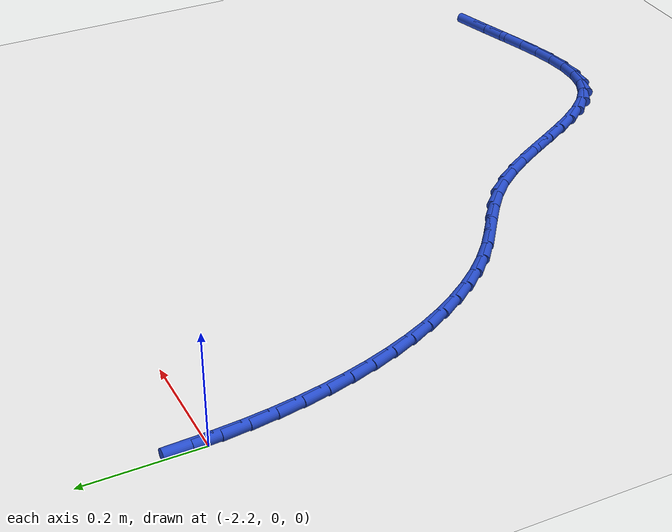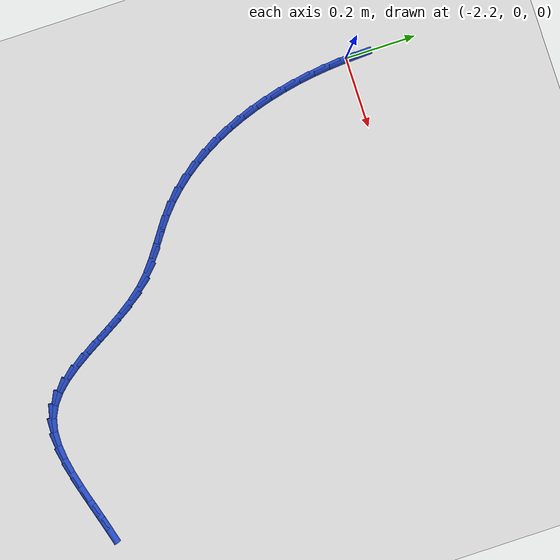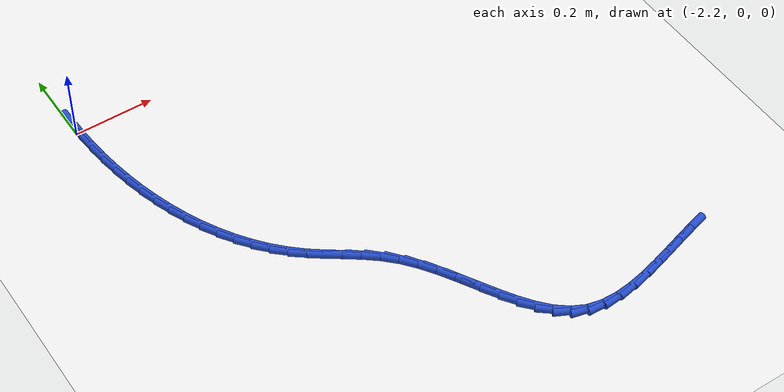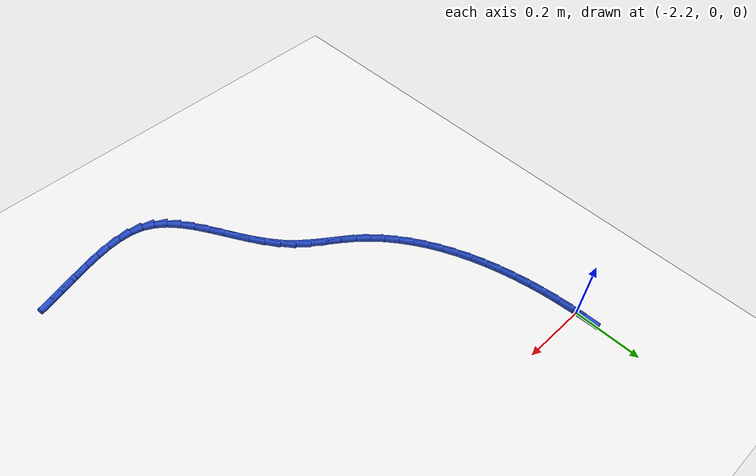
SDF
<sdf version="1.6">
 <world name="default">
  <model name="ground_plane">
   <static>1</static>
   <link name="link">
    <collision name="collision">
     <geometry><plane><normal>0 0 1</normal><size>100 100</size></plane></geometry>
     <surface><friction><ode><mu>100</mu><mu2>50</mu2></ode></friction></surface>
    </collision>
    <visual name="visual">
     <cast_shadows>0</cast_shadows>
     <geometry><plane><normal>0 0 1</normal><size>100 100</size></plane></geometry>
     <material>
      <script><uri>file://media/materials/scripts/gazebo.material</uri><name>Gazebo/WhiteGlow</name></script>
     </material>
    </visual>
   </link>
  </model>
  <model name="line">
   <link name="link_81">
    <pose>-2.1962870715884852 0.03083558580140903 0.01 0 1.57 -1.5311299063009747</pose>
    <collision name="collision">
     <geometry><cylinder><radius>0.01</radius><length>0.08</length></cylinder></geometry>
    </collision>
    <visual name="visual">
     <material>
      <script><name>Gazebo/Blue</name><uri>file://media/materials/scripts/gazebo.material</uri></script>
     </material>
     <geometry><cylinder><radius>0.01</radius><length>0.08</length></cylinder></geometry>
    </visual>
   </link>
   <link name="link_82">
    <pose>-2.1944944333536447 -0.014333550208515726 0.01 0 1.57 -1.493876951188243</pose>
    <collision name="collision">
     <geometry><cylinder><radius>0.01</radius><length>0.08</length></cylinder></geometry>
    </collision>
    <visual name="visual">
     <material>
      <script><name>Gazebo/Blue</name><uri>file://media/materials/scripts/gazebo.material</uri></script>
     </material>
     <geometry><cylinder><radius>0.01</radius><length>0.08</length></cylinder></geometry>
    </visual>
   </link>
   <link name="link_83">
    <pose>-2.1909994726579245 -0.05968058010404908 0.01 0 1.57 -1.4557814630714179</pose>
    <collision name="collision">
     <geometry><cylinder><radius>0.01</radius><length>0.08</length></cylinder></geometry>
    </collision>
    <visual name="visual">
     <material>
      <script><name>Gazebo/Blue</name><uri>file://media/materials/scripts/gazebo.material</uri></script>
     </material>
     <geometry><cylinder><radius>0.01</radius><length>0.08</length></cylinder></geometry>
    </visual>
   </link>
   <link name="link_84">
    <pose>-2.1857619215650894 -0.10501764082124379 0.01 0 1.57 -1.4165045528520377</pose>
    <collision name="collision">
     <geometry><cylinder><radius>0.01</radius><length>0.08</length></cylinder></geometry>
    </collision>
    <visual name="visual">
     <material>
      <script><name>Gazebo/Blue</name><uri>file://media/materials/scripts/gazebo.material</uri></script>
     </material>
     <geometry><cylinder><radius>0.01</radius><length>0.08</length></cylinder></geometry>
    </visual>
   </link>
   <link name="link_85">
    <pose>-2.1787415121389033 -0.15015686929615188 0.01 0 1.57 -1.3757044124202404</pose>
    <collision name="collision">
     <geometry><cylinder><radius>0.01</radius><length>0.08</length></cylinder></geometry>
    </collision>
    <visual name="visual">
     <material>
      <script><name>Gazebo/Blue</name><uri>file://media/materials/scripts/gazebo.material</uri></script>
     </material>
     <geometry><cylinder><radius>0.01</radius><length>0.08</length></cylinder></geometry>
    </visual>
   </link>
   <link name="link_86">
    <pose>-2.1698979764431288 -0.1949104024648253 0.01 0 1.57 -1.3330323817313314</pose>
    <collision name="collision">
     <geometry><cylinder><radius>0.01</radius><length>0.08</length></cylinder></geometry>
    </collision>
    <visual name="visual">
     <material>
      <script><name>Gazebo/Blue</name><uri>file://media/materials/scripts/gazebo.material</uri></script>
     </material>
     <geometry><cylinder><radius>0.01</radius><length>0.08</length></cylinder></geometry>
    </visual>
   </link>
   <link name="link_87">
    <pose>-2.159191046541532 -0.23909037726331683 0.01 0 1.57 -1.2881308047212123</pose>
    <collision name="collision">
     <geometry><cylinder><radius>0.01</radius><length>0.08</length></cylinder></geometry>
    </collision>
    <visual name="visual">
     <material>
      <script><name>Gazebo/Blue</name><uri>file://media/materials/scripts/gazebo.material</uri></script>
     </material>
     <geometry><cylinder><radius>0.01</radius><length>0.08</length></cylinder></geometry>
    </visual>
   </link>
   <link name="link_88">
    <pose>-2.146580454497875 -0.2825089306276769 0.01 0 1.57 -1.2406331932574808</pose>
    <collision name="collision">
     <geometry><cylinder><radius>0.01</radius><length>0.08</length></cylinder></geometry>
    </collision>
    <visual name="visual">
     <material>
      <script><name>Gazebo/Blue</name><uri>file://media/materials/scripts/gazebo.material</uri></script>
     </material>
     <geometry><cylinder><radius>0.01</radius><length>0.08</length></cylinder></geometry>
    </visual>
   </link>
   <link name="link_89">
    <pose>-2.1320259323759227 -0.32497819949395834 0.01 0 1.57 -1.190167490714678</pose>
    <collision name="collision">
     <geometry><cylinder><radius>0.01</radius><length>0.08</length></cylinder></geometry>
    </collision>
    <visual name="visual">
     <material>
      <script><name>Gazebo/Blue</name><uri>file://media/materials/scripts/gazebo.material</uri></script>
     </material>
     <geometry><cylinder><radius>0.01</radius><length>0.08</length></cylinder></geometry>
    </visual>
   </link>
   <link name="link_90">
    <pose>-2.1154872122394384 -0.3663103207982131 0.01 0 1.57 -1.1363635141410169</pose>
    <collision name="collision">
     <geometry><cylinder><radius>0.01</radius><length>0.08</length></cylinder></geometry>
    </collision>
    <visual name="visual">
     <material>
      <script><name>Gazebo/Blue</name><uri>file://media/materials/scripts/gazebo.material</uri></script>
     </material>
     <geometry><cylinder><radius>0.01</radius><length>0.08</length></cylinder></geometry>
    </visual>
   </link>
   <link name="link_91">
    <pose>-2.0969240261521858 -0.406317431476493 0.01 0 1.57 -1.0788659011745894</pose>
    <collision name="collision">
     <geometry><cylinder><radius>0.01</radius><length>0.08</length></cylinder></geometry>
    </collision>
    <visual name="visual">
     <material>
      <script><name>Gazebo/Blue</name><uri>file://media/materials/scripts/gazebo.material</uri></script>
     </material>
     <geometry><cylinder><radius>0.01</radius><length>0.08</length></cylinder></geometry>
    </visual>
   </link>
   <link name="link_92">
    <pose>-2.0762961061779297 -0.44481166846485104 0.01 0 1.57 -1.0173539798483802</pose>
    <collision name="collision">
     <geometry><cylinder><radius>0.01</radius><length>0.08</length></cylinder></geometry>
    </collision>
    <visual name="visual">
     <material>
      <script><name>Gazebo/Blue</name><uri>file://media/materials/scripts/gazebo.material</uri></script>
     </material>
     <geometry><cylinder><radius>0.01</radius><length>0.08</length></cylinder></geometry>
    </visual>
   </link>
   <link name="link_93">
    <pose>-2.053563184380433 -0.48160516869933767 0.01 0 1.57 -0.951569719071822</pose>
    <collision name="collision">
     <geometry><cylinder><radius>0.01</radius><length>0.08</length></cylinder></geometry>
    </collision>
    <visual name="visual">
     <material>
      <script><name>Gazebo/Blue</name><uri>file://media/materials/scripts/gazebo.material</uri></script>
     </material>
     <geometry><cylinder><radius>0.01</radius><length>0.08</length></cylinder></geometry>
    </visual>
   </link>
   <link name="link_94">
    <pose>-2.0286849928234605 -0.5165100691160054 0.01 0 1.57 -0.8813540256920338</pose>
    <collision name="collision">
     <geometry><cylinder><radius>0.01</radius><length>0.08</length></cylinder></geometry>
    </collision>
    <visual name="visual">
     <material>
      <script><name>Gazebo/Blue</name><uri>file://media/materials/scripts/gazebo.material</uri></script>
     </material>
     <geometry><cylinder><radius>0.01</radius><length>0.08</length></cylinder></geometry>
    </visual>
   </link>
   <link name="link_95">
    <pose>-2.001621263570775 -0.5493385066509062 0.01 0 1.57 -0.8066898335012568</pose>
    <collision name="collision">
     <geometry><cylinder><radius>0.01</radius><length>0.08</length></cylinder></geometry>
    </collision>
    <visual name="visual">
     <material>
      <script><name>Gazebo/Blue</name><uri>file://media/materials/scripts/gazebo.material</uri></script>
     </material>
     <geometry><cylinder><radius>0.01</radius><length>0.08</length></cylinder></geometry>
    </visual>
   </link>
   <link name="link_96">
    <pose>-1.9723317286861417 -0.5799026182400931 0.01 0 1.57 -0.7277475478803089</pose>
    <collision name="collision">
     <geometry><cylinder><radius>0.01</radius><length>0.08</length></cylinder></geometry>
    </collision>
    <visual name="visual">
     <material>
      <script><name>Gazebo/Blue</name><uri>file://media/materials/scripts/gazebo.material</uri></script>
     </material>
     <geometry><cylinder><radius>0.01</radius><length>0.08</length></cylinder></geometry>
    </visual>
   </link>
   <link name="link_97">
    <pose>-1.9407761202333238 -0.6080145408196167 0.01 0 1.57 -0.6520932779555263</pose>
    <collision name="collision">
     <geometry><cylinder><radius>0.01</radius><length>0.08</length></cylinder></geometry>
    </collision>
    <visual name="visual">
     <material>
      <script><name>Gazebo/Blue</name><uri>file://media/materials/scripts/gazebo.material</uri></script>
     </material>
     <geometry><cylinder><radius>0.01</radius><length>0.08</length></cylinder></geometry>
    </visual>
   </link>
   <link name="link_98">
    <pose>-1.9070865921185032 -0.6337369225241378 0.01 0 1.57 -0.6142797580801906</pose>
    <collision name="collision">
     <geometry><cylinder><radius>0.01</radius><length>0.08</length></cylinder></geometry>
    </collision>
    <visual name="visual">
     <material>
      <script><name>Gazebo/Blue</name><uri>file://media/materials/scripts/gazebo.material</uri></script>
     </material>
     <geometry><cylinder><radius>0.01</radius><length>0.08</length></cylinder></geometry>
    </visual>
   </link>
   <link name="link_99">
    <pose>-1.8722190750879717 -0.6583292744884289 0.01 0 1.57 -0.6238586758632365</pose>
    <collision name="collision">
     <geometry><cylinder><radius>0.01</radius><length>0.08</length></cylinder></geometry>
    </collision>
    <visual name="visual">
     <material>
      <script><name>Gazebo/Blue</name><uri>file://media/materials/scripts/gazebo.material</uri></script>
     </material>
     <geometry><cylinder><radius>0.01</radius><length>0.08</length></cylinder></geometry>
    </visual>
   </link>
   <link name="link_100">
    <pose>-1.8373752386891768 -0.6834081410442114 0.01 0 1.57 -0.6799289709515768</pose>
    <collision name="collision">
     <geometry><cylinder><radius>0.01</radius><length>0.08</length></cylinder></geometry>
    </collision>
    <visual name="visual">
     <material>
      <script><name>Gazebo/Blue</name><uri>file://media/materials/scripts/gazebo.material</uri></script>
     </material>
     <geometry><cylinder><radius>0.01</radius><length>0.08</length></cylinder></geometry>
    </visual>
   </link>
   <link name="link_101">
    <pose>-1.803756795201307 -0.7105901286080294 0.01 0 1.57 -0.7803479561149288</pose>
    <collision name="collision">
     <geometry><cylinder><radius>0.01</radius><length>0.08</length></cylinder></geometry>
    </collision>
    <visual name="visual">
     <material>
      <script><name>Gazebo/Blue</name><uri>file://media/materials/scripts/gazebo.material</uri></script>
     </material>
     <geometry><cylinder><radius>0.01</radius><length>0.08</length></cylinder></geometry>
    </visual>
   </link>
   <link name="link_102">
    <pose>-1.7725559642950952 -0.7414773990668213 0.01 0 1.57 -0.8935947313071957</pose>
    <collision name="collision">
     <geometry><cylinder><radius>0.01</radius><length>0.08</length></cylinder></geometry>
    </collision>
    <visual name="visual">
     <material>
      <script><name>Gazebo/Blue</name><uri>file://media/materials/scripts/gazebo.material</uri></script>
     </material>
     <geometry><cylinder><radius>0.01</radius><length>0.08</length></cylinder></geometry>
    </visual>
   </link>
   <link name="link_103">
    <pose>-1.744285344615105 -0.7766379616741067 0.01 0 1.57 -0.975233468103987</pose>
    <collision name="collision">
     <geometry><cylinder><radius>0.01</radius><length>0.08</length></cylinder></geometry>
    </collision>
    <visual name="visual">
     <material>
      <script><name>Gazebo/Blue</name><uri>file://media/materials/scripts/gazebo.material</uri></script>
     </material>
     <geometry><cylinder><radius>0.01</radius><length>0.08</length></cylinder></geometry>
    </visual>
   </link>
   <link name="link_104">
    <pose>-1.718335429204838 -0.8149323616444256 0.01 0 1.57 -1.025510483424408</pose>
    <collision name="collision">
     <geometry><cylinder><radius>0.01</radius><length>0.08</length></cylinder></geometry>
    </collision>
    <visual name="visual">
     <material>
      <script><name>Gazebo/Blue</name><uri>file://media/materials/scripts/gazebo.material</uri></script>
     </material>
     <geometry><cylinder><radius>0.01</radius><length>0.08</length></cylinder></geometry>
    </visual>
   </link>
   <link name="link_105">
    <pose>-1.6939916853654542 -0.8550613306435385 0.01 0 1.57 -1.047666555721029</pose>
    <collision name="collision">
     <geometry><cylinder><radius>0.01</radius><length>0.08</length></cylinder></geometry>
    </collision>
    <visual name="visual">
     <material>
      <script><name>Gazebo/Blue</name><uri>file://media/materials/scripts/gazebo.material</uri></script>
     </material>
     <geometry><cylinder><radius>0.01</radius><length>0.08</length></cylinder></geometry>
    </visual>
   </link>
   <link name="link_106">
    <pose>-1.6705395803981147 -0.895725600337207 0.01 0 1.57 -1.0427251957338821</pose>
    <collision name="collision">
     <geometry><cylinder><radius>0.01</radius><length>0.08</length></cylinder></geometry>
    </collision>
    <visual name="visual">
     <material>
      <script><name>Gazebo/Blue</name><uri>file://media/materials/scripts/gazebo.material</uri></script>
     </material>
     <geometry><cylinder><radius>0.01</radius><length>0.08</length></cylinder></geometry>
    </visual>
   </link>
   <link name="link_107">
    <pose>-1.6472645816039804 -0.9356259023911905 0.01 0 1.57 -1.0090813245783106</pose>
    <collision name="collision">
     <geometry><cylinder><radius>0.01</radius><length>0.08</length></cylinder></geometry>
    </collision>
    <visual name="visual">
     <material>
      <script><name>Gazebo/Blue</name><uri>file://media/materials/scripts/gazebo.material</uri></script>
     </material>
     <geometry><cylinder><radius>0.01</radius><length>0.08</length></cylinder></geometry>
    </visual>
   </link>
   <link name="link_108">
    <pose>-1.6234521562842132 -0.9734629684712506 0.01 0 1.57 -0.9421522895086388</pose>
    <collision name="collision">
     <geometry><cylinder><radius>0.01</radius><length>0.08</length></cylinder></geometry>
    </collision>
    <visual name="visual">
     <material>
      <script><name>Gazebo/Blue</name><uri>file://media/materials/scripts/gazebo.material</uri></script>
     </material>
     <geometry><cylinder><radius>0.01</radius><length>0.08</length></cylinder></geometry>
    </visual>
   </link>
   <link name="link_109">
    <pose>-1.598387771739973 -1.007937530243148 0.01 0 1.57 -0.8342988603674677</pose>
    <collision name="collision">
     <geometry><cylinder><radius>0.01</radius><length>0.08</length></cylinder></geometry>
    </collision>
    <visual name="visual">
     <material>
      <script><name>Gazebo/Blue</name><uri>file://media/materials/scripts/gazebo.material</uri></script>
     </material>
     <geometry><cylinder><radius>0.01</radius><length>0.08</length></cylinder></geometry>
    </visual>
   </link>
   <link name="link_110">
    <pose>-1.571356895272421 -1.0377503193726425 0.01 0 1.57 -0.6764261572818878</pose>
    <collision name="collision">
     <geometry><cylinder><radius>0.01</radius><length>0.08</length></cylinder></geometry>
    </collision>
    <visual name="visual">
     <material>
      <script><name>Gazebo/Blue</name><uri>file://media/materials/scripts/gazebo.material</uri></script>
     </material>
     <geometry><cylinder><radius>0.01</radius><length>0.08</length></cylinder></geometry>
    </visual>
   </link>
   <link name="link_111">
    <pose>-1.5416449941827186 -1.061602067525497 0.01 0 1.57 -0.4645623147952955</pose>
    <collision name="collision">
     <geometry><cylinder><radius>0.01</radius><length>0.08</length></cylinder></geometry>
    </collision>
    <visual name="visual">
     <material>
      <script><name>Gazebo/Blue</name><uri>file://media/materials/scripts/gazebo.material</uri></script>
     </material>
     <geometry><cylinder><radius>0.01</radius><length>0.08</length></cylinder></geometry>
    </visual>
   </link>
   <link name="link_112">
    <pose>-1.5085376065121125 -1.0781936330912862 0.01 0 1.57 -0.22811563160458098</pose>
    <collision name="collision">
     <geometry><cylinder><radius>0.01</radius><length>0.08</length></cylinder></geometry>
    </collision>
    <visual name="visual">
     <material>
      <script><name>Gazebo/Blue</name><uri>file://media/materials/scripts/gazebo.material</uri></script>
     </material>
     <geometry><cylinder><radius>0.01</radius><length>0.08</length></cylinder></geometry>
    </visual>
   </link>
   <link name="link_113">
    <pose>-1.4716207350009745 -1.0867641270338635 0.01 0 1.57 -0.03876825530431525</pose>
    <collision name="collision">
     <geometry><cylinder><radius>0.01</radius><length>0.08</length></cylinder></geometry>
    </collision>
    <visual name="visual">
     <material>
      <script><name>Gazebo/Blue</name><uri>file://media/materials/scripts/gazebo.material</uri></script>
     </material>
     <geometry><cylinder><radius>0.01</radius><length>0.08</length></cylinder></geometry>
    </visual>
   </link>
   <link name="link_114">
    <pose>-1.431467825144877 -1.0883215656376901 0.01 0 1.57 0.09556527567693684</pose>
    <collision name="collision">
     <geometry><cylinder><radius>0.01</radius><length>0.08</length></cylinder></geometry>
    </collision>
    <visual name="visual">
     <material>
      <script><name>Gazebo/Blue</name><uri>file://media/materials/scripts/gazebo.material</uri></script>
     </material>
     <geometry><cylinder><radius>0.01</radius><length>0.08</length></cylinder></geometry>
    </visual>
   </link>
   <link name="link_115">
    <pose>-1.3888548672248875 -1.0842368039916395 0.01 0 1.57 0.1864472125547355</pose>
    <collision name="collision">
     <geometry><cylinder><radius>0.01</radius><length>0.08</length></cylinder></geometry>
    </collision>
    <visual name="visual">
     <material>
      <script><name>Gazebo/Blue</name><uri>file://media/materials/scripts/gazebo.material</uri></script>
     </material>
     <geometry><cylinder><radius>0.01</radius><length>0.08</length></cylinder></geometry>
    </visual>
   </link>
   <link name="link_116">
    <pose>-1.344557851522074 -1.0758806971845867 0.01 0 1.57 0.24404832944977806</pose>
    <collision name="collision">
     <geometry><cylinder><radius>0.01</radius><length>0.08</length></cylinder></geometry>
    </collision>
    <visual name="visual">
     <material>
      <script><name>Gazebo/Blue</name><uri>file://media/materials/scripts/gazebo.material</uri></script>
     </material>
     <geometry><cylinder><radius>0.01</radius><length>0.08</length></cylinder></geometry>
    </visual>
   </link>
   <link name="link_117">
    <pose>-1.2993527683175057 -1.0646241003054056 0.01 0 1.57 0.27488588816166065</pose>
    <collision name="collision">
     <geometry><cylinder><radius>0.01</radius><length>0.08</length></cylinder></geometry>
    </collision>
    <visual name="visual">
     <material>
      <script><name>Gazebo/Blue</name><uri>file://media/materials/scripts/gazebo.material</uri></script>
     </material>
     <geometry><cylinder><radius>0.01</radius><length>0.08</length></cylinder></geometry>
    </visual>
   </link>
   <link name="link_118">
    <pose>-1.2540156078922486 -1.0518378684429692 0.01 0 1.57 0.28205255390775685</pose>
    <collision name="collision">
     <geometry><cylinder><radius>0.01</radius><length>0.08</length></cylinder></geometry>
    </collision>
    <visual name="visual">
     <material>
      <script><name>Gazebo/Blue</name><uri>file://media/materials/scripts/gazebo.material</uri></script>
     </material>
     <geometry><cylinder><radius>0.01</radius><length>0.08</length></cylinder></geometry>
    </visual>
   </link>
   <link name="link_119">
    <pose>-1.209317575215641 -1.0388853656974895 0.01 0 1.57 0.2744693485041892</pose>
    <collision name="collision">
     <geometry><cylinder><radius>0.01</radius><length>0.08</length></cylinder></geometry>
    </collision>
    <visual name="visual">
     <material>
      <script><name>Gazebo/Blue</name><uri>file://media/materials/scripts/gazebo.material</uri></script>
     </material>
     <geometry><cylinder><radius>0.01</radius><length>0.08</length></cylinder></geometry>
    </visual>
   </link>
   <link name="link_120">
    <pose>-1.1656923250599738 -1.02660155073984 0.01 0 1.57 0.26646950796726876</pose>
    <collision name="collision">
     <geometry><cylinder><radius>0.01</radius><length>0.08</length></cylinder></geometry>
    </collision>
    <visual name="visual">
     <material>
      <script><name>Gazebo/Blue</name><uri>file://media/materials/scripts/gazebo.material</uri></script>
     </material>
     <geometry><cylinder><radius>0.01</radius><length>0.08</length></cylinder></geometry>
    </visual>
   </link>
  </model>
 </world>
</sdf>
